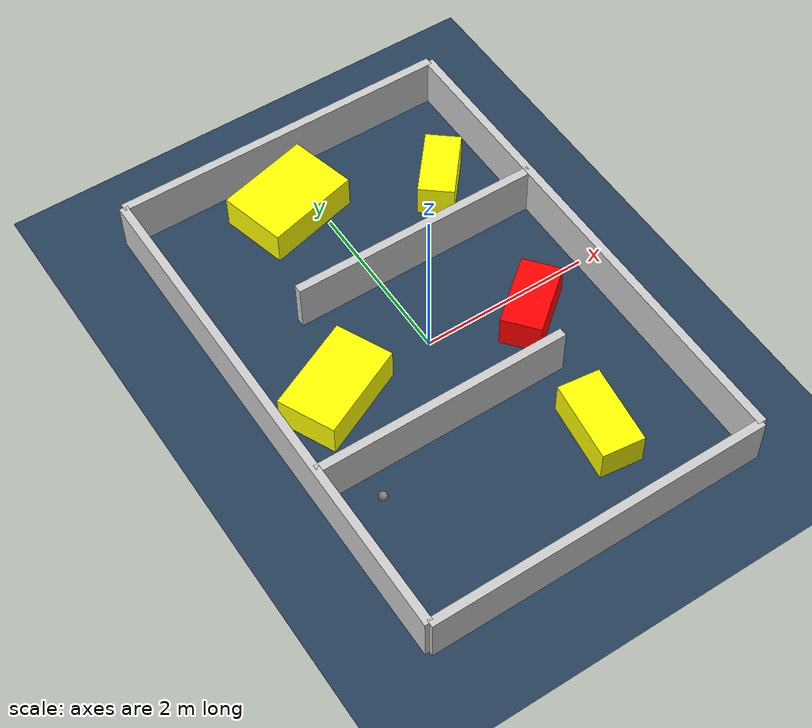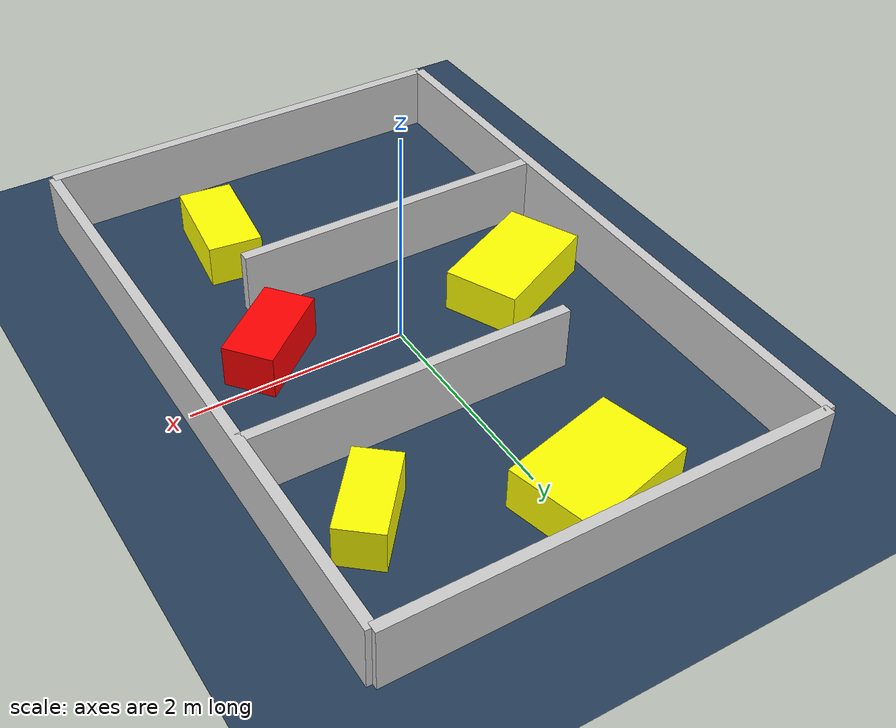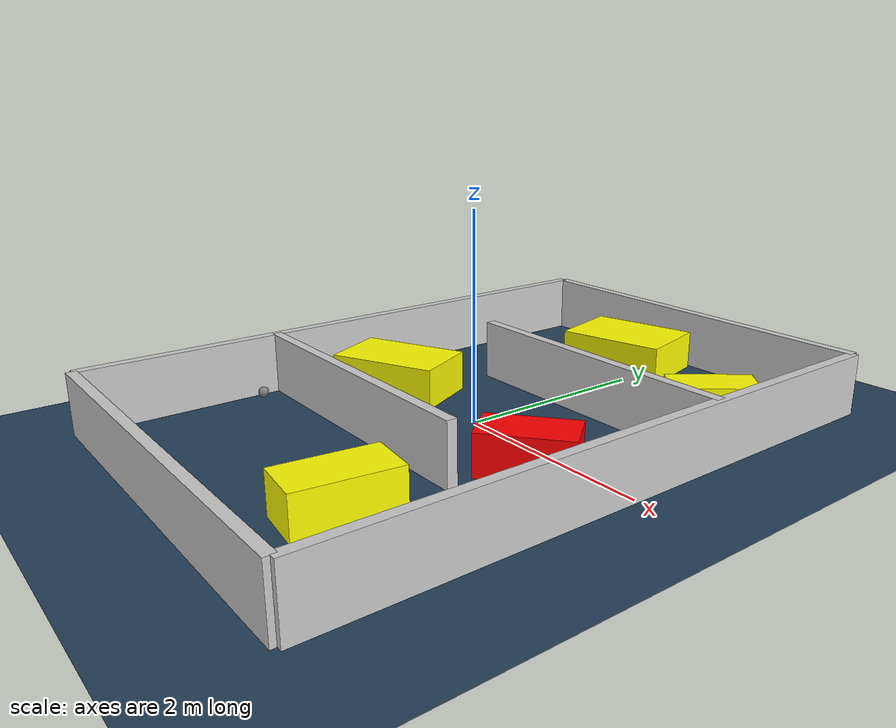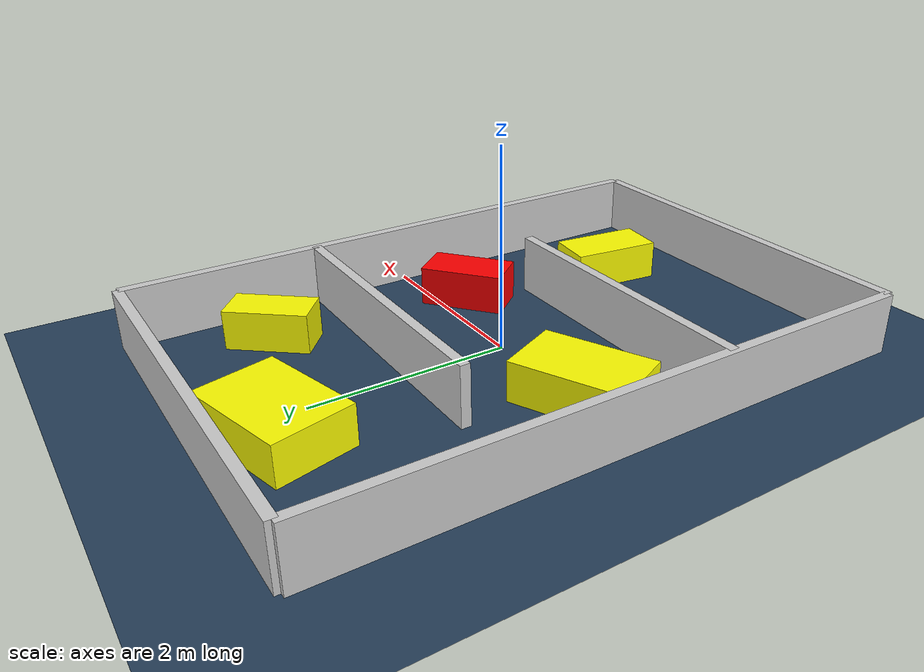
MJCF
<?xml version="1.0" ?>
<mujoco model="generated_environment">
  <option timestep="0.01" integrator="RK4" cone="elliptic"/>
  <default>
    <geom density="1"/>
  </default>
  <asset>
    <texture builtin="gradient" height="3072" rgb1="0.3 0.5 0.7" rgb2="0 0 0" type="skybox" width="512"/>
    <texture builtin="checker" height="300" mark="edge" markrgb="0.8 0.8 0.8" name="groundplane" rgb1="0.2 0.3 0.4" rgb2="0.1 0.2 0.3" type="2d" width="300"/>
    <material name="groundplane" reflectance="0.2" texrepeat="5 5" texture="groundplane" texuniform="true"/>
    <material name="robot" rgba="0.0 1.0 0.0 1"/>
  </asset>
  <worldbody>
    <light dir="0 0 -1" directional="true" pos="0 0 1.5"/>
    <geom condim="4" friction="1.0 0.005 0.001" material="groundplane" name="floor" size="0 0 0.05" type="plane"/>
    <body name="walls">
      <geom name="wall_1" condim="4" pos="-2.0 0.0 0.3" rgba="0.800000011920929 0.800000011920929 0.800000011920929 1.0" size="0.05 3.0 0.3" type="box"/>
      <geom name="wall_2" condim="4" pos="2.0 0.0 0.3" rgba="0.800000011920929 0.800000011920929 0.800000011920929 1.0" size="0.05 3.0 0.3" type="box"/>
      <geom name="wall_3" condim="4" pos="0.0 -3.0 0.3" rgba="0.800000011920929 0.800000011920929 0.800000011920929 1.0" size="2.0 0.05 0.3" type="box"/>
      <geom name="wall_4" condim="4" pos="0.0 3.0 0.3" rgba="0.800000011920929 0.800000011920929 0.800000011920929 1.0" size="2.0 0.05 0.3" type="box"/>
      <geom name="wall_5" condim="4" pos="-0.5 -1.0 0.3" rgba="0.800000011920929 0.800000011920929 0.800000011920929 1.0" size="1.5 0.05 0.3" type="box"/>
      <geom name="wall_6" condim="4" pos="0.5 1.0 0.3" rgba="0.800000011920929 0.800000011920929 0.800000011920929 1.0" size="1.5 0.05 0.3" type="box"/>
    </body>
    <body name="robot">
      <joint name="joint_x" type="slide" pos="0 0 0" axis="1 0 0"/>
      <joint name="joint_y" type="slide" pos="0 0 0" axis="0 1 0"/>
      <geom name="robot" type="sphere" pos="-1.4984667448213806 -1.4132966121672077 0.2" size="0.05" mass="5." friction="1.0 0.005 0.0001" condim="4"/>
      <site name="sensor_ball"/>
    </body>
    <body name="obstacle_1_movable">
      <geom name="obstacle_1_movable" condim="4" pos="-1.1955830317899736 -0.053899243008964426 0.2" euler="0 0 205.07662393896112" friction="1.0 0.005 0.001" rgba="1 1 0 1" size="0.5605215145521878 0.34485373137960634 0.2" type="box" mass="0.1"/>
      <joint type="free"/>
    </body>
    <body name="obstacle_2_movable">
      <geom name="obstacle_2_movable" condim="4" pos="-0.30195590189961297 2.3804621337336735 0.2" euler="0 0 284.2330669572846" friction="1.0 0.005 0.001" rgba="1 1 0 1" size="0.40103705753890895 0.5618475702315722 0.2" type="box" mass="0.1"/>
      <joint type="free"/>
    </body>
    <body name="obstacle_3_static">
      <geom name="obstacle_3_static" condim="4" pos="1.1112066550976167 -0.30397221449942036 0.2" euler="0 0 39.20976391819246" friction="1.0 0.005 0.001" rgba="1 0 0 1" size="0.4308696436663512 0.2323799196437745 0.2" type="box"/>
    </body>
    <body name="obstacle_4_movable">
      <geom name="obstacle_4_movable" condim="4" pos="0.8163516859661777 -1.9197246488185065 0.2" euler="0 0 172.91822826860601" friction="1.0 0.005 0.001" rgba="1 1 0 1" size="0.24728001686054746 0.46893639717642405 0.2" type="box" mass="0.1"/>
      <joint type="free"/>
    </body>
    <body name="obstacle_5_movable">
      <geom name="obstacle_5_movable" condim="4" pos="1.327609430651921 1.7732763230956246 0.2" euler="0 0 320.29323167796514" friction="1.0 0.005 0.001" rgba="1 1 0 1" size="0.20766587978767254 0.4151681016981178 0.2" type="box" mass="0.1"/>
      <joint type="free"/>
    </body>
  </worldbody>
  <actuator>
    <motor name="actuator_x" joint="joint_x" gear="1" ctrlrange="-1 1"/>
    <motor name="actuator_y" joint="joint_y" gear="1" ctrlrange="-1 1"/>
  </actuator>
</mujoco>
